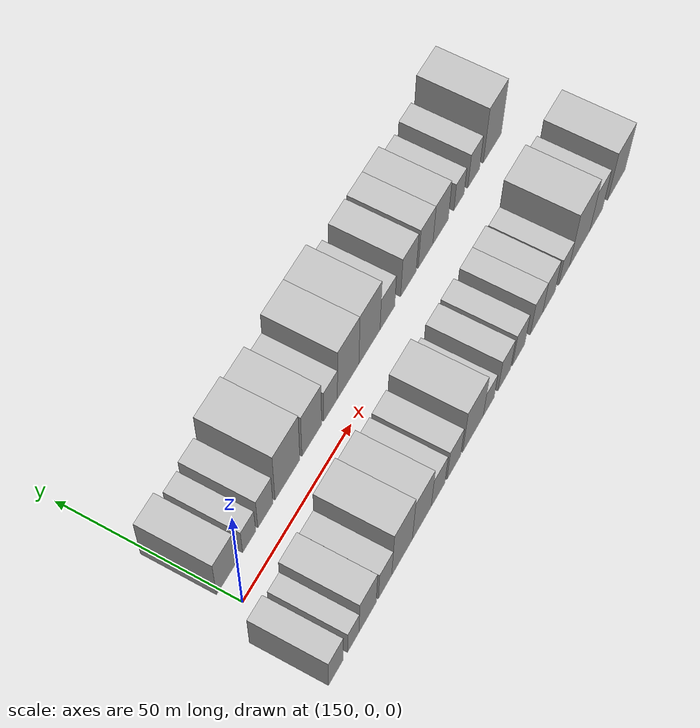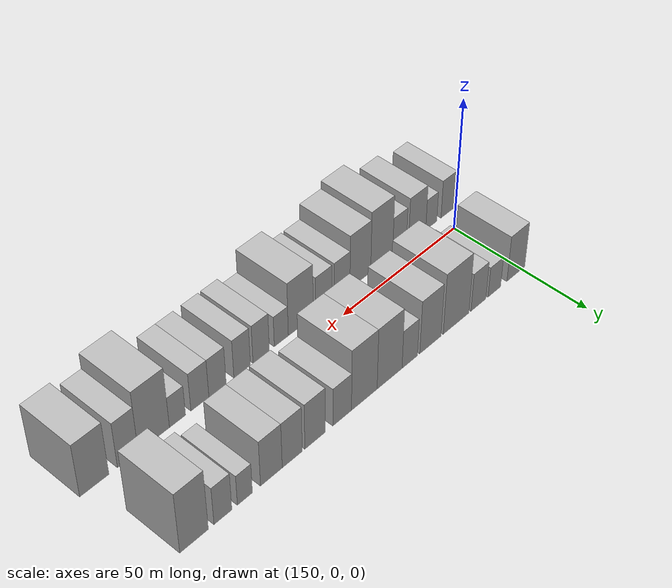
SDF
<sdf version="1.6">
 <world name="default">
  <model name="building_17">
   <static>1</static>
   <pose>152.8760 16.0000 0 0.000000 0.000000 1.570796</pose>
   <link name="link">
    <pose>0 0 9.00 0 0 0</pose>
    <collision name="collision"><geometry><box><size>20.0000 8.4531 18.0000</size></box></geometry></collision>
    <visual name="visual">
     <cast_shadows>0</cast_shadows>
     <geometry><box><size>20.0000 8.4531 18.0000</size></box></geometry>
     <material>
      <script>
       <uri>model://HANNAS_wall/materials/scripts</uri>
       <uri>model://HANNAS_wall/materials/textures</uri>
       <name>vrc/HANNAS_wall</name>
      </script>
     </material>
    </visual>
   </link>
  </model>
  <model name="building_18">
   <static>1</static>
   <pose>163.0296 16.0000 0 0.000000 0.000000 1.570796</pose>
   <link name="link">
    <pose>0 0 6.00 0 0 0</pose>
    <collision name="collision"><geometry><box><size>20.0000 5.8539 12.0000</size></box></geometry></collision>
    <visual name="visual">
     <cast_shadows>0</cast_shadows>
     <geometry><box><size>20.0000 5.8539 12.0000</size></box></geometry>
     <material>
      <script>
       <uri>model://HANNAS_wall/materials/scripts</uri>
       <uri>model://HANNAS_wall/materials/textures</uri>
       <name>vrc/HANNAS_wall</name>
      </script>
     </material>
    </visual>
   </link>
  </model>
  <model name="building_19">
   <static>1</static>
   <pose>170.3531 16.0000 0 0.000000 0.000000 1.570796</pose>
   <link name="link">
    <pose>0 0 7.50 0 0 0</pose>
    <collision name="collision"><geometry><box><size>20.0000 6.7931 15.0000</size></box></geometry></collision>
    <visual name="visual">
     <cast_shadows>0</cast_shadows>
     <geometry><box><size>20.0000 6.7931 15.0000</size></box></geometry>
     <material>
      <script>
       <uri>model://HANNAS_wall/materials/scripts</uri>
       <uri>model://HANNAS_wall/materials/textures</uri>
       <name>vrc/HANNAS_wall</name>
      </script>
     </material>
    </visual>
   </link>
  </model>
  <model name="building_20">
   <static>1</static>
   <pose>180.4915 16.0000 0 0.000000 0.000000 1.570796</pose>
   <link name="link">
    <pose>0 0 12.00 0 0 0</pose>
    <collision name="collision"><geometry><box><size>20.0000 11.4838 24.0000</size></box></geometry></collision>
    <visual name="visual">
     <cast_shadows>0</cast_shadows>
     <geometry><box><size>20.0000 11.4838 24.0000</size></box></geometry>
     <material>
      <script>
       <uri>model://HANNAS_wall/materials/scripts</uri>
       <uri>model://HANNAS_wall/materials/textures</uri>
       <name>vrc/HANNAS_wall</name>
      </script>
     </material>
    </visual>
   </link>
  </model>
  <model name="building_21">
   <static>1</static>
   <pose>191.8626 16.0000 0 0.000000 0.000000 1.570796</pose>
   <link name="link">
    <pose>0 0 10.50 0 0 0</pose>
    <collision name="collision"><geometry><box><size>20.0000 9.2583 21.0000</size></box></geometry></collision>
    <visual name="visual">
     <cast_shadows>0</cast_shadows>
     <geometry><box><size>20.0000 9.2583 21.0000</size></box></geometry>
     <material>
      <script>
       <uri>model://HANNAS_wall/materials/scripts</uri>
       <uri>model://HANNAS_wall/materials/textures</uri>
       <name>vrc/HANNAS_wall</name>
      </script>
     </material>
    </visual>
   </link>
  </model>
  <model name="building_22">
   <static>1</static>
   <pose>200.7845 16.0000 0 0.000000 0.000000 1.570796</pose>
   <link name="link">
    <pose>0 0 7.50 0 0 0</pose>
    <collision name="collision"><geometry><box><size>20.0000 6.5855 15.0000</size></box></geometry></collision>
    <visual name="visual">
     <cast_shadows>0</cast_shadows>
     <geometry><box><size>20.0000 6.5855 15.0000</size></box></geometry>
     <material>
      <script>
       <uri>model://HANNAS_wall/materials/scripts</uri>
       <uri>model://HANNAS_wall/materials/textures</uri>
       <name>vrc/HANNAS_wall</name>
      </script>
     </material>
    </visual>
   </link>
  </model>
  <model name="building_23">
   <static>1</static>
   <pose>209.3078 16.0000 0 0.000000 0.000000 1.570796</pose>
   <link name="link">
    <pose>0 0 12.00 0 0 0</pose>
    <collision name="collision"><geometry><box><size>20.0000 10.4612 24.0000</size></box></geometry></collision>
    <visual name="visual">
     <cast_shadows>0</cast_shadows>
     <geometry><box><size>20.0000 10.4612 24.0000</size></box></geometry>
     <material>
      <script>
       <uri>model://HANNAS_wall/materials/scripts</uri>
       <uri>model://HANNAS_wall/materials/textures</uri>
       <name>vrc/HANNAS_wall</name>
      </script>
     </material>
    </visual>
   </link>
  </model>
  <model name="building_24">
   <static>1</static>
   <pose>219.7901 16.0000 0 0.000000 0.000000 1.570796</pose>
   <link name="link">
    <pose>0 0 12.00 0 0 0</pose>
    <collision name="collision"><geometry><box><size>20.0000 10.5034 24.0000</size></box></geometry></collision>
    <visual name="visual">
     <cast_shadows>0</cast_shadows>
     <geometry><box><size>20.0000 10.5034 24.0000</size></box></geometry>
     <material>
      <script>
       <uri>model://HANNAS_wall/materials/scripts</uri>
       <uri>model://HANNAS_wall/materials/textures</uri>
       <name>vrc/HANNAS_wall</name>
      </script>
     </material>
    </visual>
   </link>
  </model>
  <model name="building_25">
   <static>1</static>
   <pose>228.7678 16.0000 0 0.000000 0.000000 1.570796</pose>
   <link name="link">
    <pose>0 0 7.50 0 0 0</pose>
    <collision name="collision"><geometry><box><size>20.0000 7.4520 15.0000</size></box></geometry></collision>
    <visual name="visual">
     <cast_shadows>0</cast_shadows>
     <geometry><box><size>20.0000 7.4520 15.0000</size></box></geometry>
     <material>
      <script>
       <uri>model://HANNAS_wall/materials/scripts</uri>
       <uri>model://HANNAS_wall/materials/textures</uri>
       <name>vrc/HANNAS_wall</name>
      </script>
     </material>
    </visual>
   </link>
  </model>
  <model name="building_26">
   <static>1</static>
   <pose>239.5030 16.0000 0 0.000000 0.000000 1.570796</pose>
   <link name="link">
    <pose>0 0 9.00 0 0 0</pose>
    <collision name="collision"><geometry><box><size>20.0000 8.0183 18.0000</size></box></geometry></collision>
    <visual name="visual">
     <cast_shadows>0</cast_shadows>
     <geometry><box><size>20.0000 8.0183 18.0000</size></box></geometry>
     <material>
      <script>
       <uri>model://HANNAS_wall/materials/scripts</uri>
       <uri>model://HANNAS_wall/materials/textures</uri>
       <name>vrc/HANNAS_wall</name>
      </script>
     </material>
    </visual>
   </link>
  </model>
  <model name="building_27">
   <static>1</static>
   <pose>248.3474 16.0000 0 0.000000 0.000000 1.570796</pose>
   <link name="link">
    <pose>0 0 9.00 0 0 0</pose>
    <collision name="collision"><geometry><box><size>20.0000 7.6706 18.0000</size></box></geometry></collision>
    <visual name="visual">
     <cast_shadows>0</cast_shadows>
     <geometry><box><size>20.0000 7.6706 18.0000</size></box></geometry>
     <material>
      <script>
       <uri>model://HANNAS_wall/materials/scripts</uri>
       <uri>model://HANNAS_wall/materials/textures</uri>
       <name>vrc/HANNAS_wall</name>
      </script>
     </material>
    </visual>
   </link>
  </model>
  <model name="building_28">
   <static>1</static>
   <pose>256.2662 16.0000 0 0.000000 0.000000 1.570796</pose>
   <link name="link">
    <pose>0 0 9.00 0 0 0</pose>
    <collision name="collision"><geometry><box><size>20.0000 8.1670 18.0000</size></box></geometry></collision>
    <visual name="visual">
     <cast_shadows>0</cast_shadows>
     <geometry><box><size>20.0000 8.1670 18.0000</size></box></geometry>
     <material>
      <script>
       <uri>model://HANNAS_wall/materials/scripts</uri>
       <uri>model://HANNAS_wall/materials/textures</uri>
       <name>vrc/HANNAS_wall</name>
      </script>
     </material>
    </visual>
   </link>
  </model>
  <model name="building_29">
   <static>1</static>
   <pose>266.1053 16.0000 0 0.000000 0.000000 1.570796</pose>
   <link name="link">
    <pose>0 0 6.00 0 0 0</pose>
    <collision name="collision"><geometry><box><size>20.0000 5.5113 12.0000</size></box></geometry></collision>
    <visual name="visual">
     <cast_shadows>0</cast_shadows>
     <geometry><box><size>20.0000 5.5113 12.0000</size></box></geometry>
     <material>
      <script>
       <uri>model://HANNAS_wall/materials/scripts</uri>
       <uri>model://HANNAS_wall/materials/textures</uri>
       <name>vrc/HANNAS_wall</name>
      </script>
     </material>
    </visual>
   </link>
  </model>
  <model name="building_30">
   <static>1</static>
   <pose>274.0847 16.0000 0 0.000000 0.000000 1.570796</pose>
   <link name="link">
    <pose>0 0 7.50 0 0 0</pose>
    <collision name="collision"><geometry><box><size>20.0000 6.4473 15.0000</size></box></geometry></collision>
    <visual name="visual">
     <cast_shadows>0</cast_shadows>
     <geometry><box><size>20.0000 6.4473 15.0000</size></box></geometry>
     <material>
      <script>
       <uri>model://HANNAS_wall/materials/scripts</uri>
       <uri>model://HANNAS_wall/materials/textures</uri>
       <name>vrc/HANNAS_wall</name>
      </script>
     </material>
    </visual>
   </link>
  </model>
  <model name="building_31">
   <static>1</static>
   <pose>284.3253 16.0000 0 0.000000 0.000000 1.570796</pose>
   <link name="link">
    <pose>0 0 12.00 0 0 0</pose>
    <collision name="collision"><geometry><box><size>20.0000 10.0339 24.0000</size></box></geometry></collision>
    <visual name="visual">
     <cast_shadows>0</cast_shadows>
     <geometry><box><size>20.0000 10.0339 24.0000</size></box></geometry>
     <material>
      <script>
       <uri>model://HANNAS_wall/materials/scripts</uri>
       <uri>model://HANNAS_wall/materials/textures</uri>
       <name>vrc/HANNAS_wall</name>
      </script>
     </material>
    </visual>
   </link>
  </model>
  <model name="building_46">
   <static>1</static>
   <pose>145.9405 -16.0000 0 0.000000 0.000000 1.570796</pose>
   <link name="link">
    <pose>0 0 7.50 0 0 0</pose>
    <collision name="collision"><geometry><box><size>20.0000 6.5711 15.0000</size></box></geometry></collision>
    <visual name="visual">
     <cast_shadows>0</cast_shadows>
     <geometry><box><size>20.0000 6.5711 15.0000</size></box></geometry>
     <material>
      <script>
       <uri>model://HANNAS_wall/materials/scripts</uri>
       <uri>model://HANNAS_wall/materials/textures</uri>
       <name>vrc/HANNAS_wall</name>
      </script>
     </material>
    </visual>
   </link>
  </model>
  <model name="building_47">
   <static>1</static>
   <pose>153.8196 -16.0000 0 0.000000 0.000000 1.570796</pose>
   <link name="link">
    <pose>0 0 6.00 0 0 0</pose>
    <collision name="collision"><geometry><box><size>20.0000 5.1871 12.0000</size></box></geometry></collision>
    <visual name="visual">
     <cast_shadows>0</cast_shadows>
     <geometry><box><size>20.0000 5.1871 12.0000</size></box></geometry>
     <material>
      <script>
       <uri>model://HANNAS_wall/materials/scripts</uri>
       <uri>model://HANNAS_wall/materials/textures</uri>
       <name>vrc/HANNAS_wall</name>
      </script>
     </material>
    </visual>
   </link>
  </model>
  <model name="building_48">
   <static>1</static>
   <pose>160.4005 -16.0000 0 0.000000 0.000000 1.570796</pose>
   <link name="link">
    <pose>0 0 9.00 0 0 0</pose>
    <collision name="collision"><geometry><box><size>20.0000 7.9746 18.0000</size></box></geometry></collision>
    <visual name="visual">
     <cast_shadows>0</cast_shadows>
     <geometry><box><size>20.0000 7.9746 18.0000</size></box></geometry>
     <material>
      <script>
       <uri>model://HANNAS_wall/materials/scripts</uri>
       <uri>model://HANNAS_wall/materials/textures</uri>
       <name>vrc/HANNAS_wall</name>
      </script>
     </material>
    </visual>
   </link>
  </model>
  <model name="building_49">
   <static>1</static>
   <pose>168.5169 -16.0000 0 0.000000 0.000000 1.570796</pose>
   <link name="link">
    <pose>0 0 7.50 0 0 0</pose>
    <collision name="collision"><geometry><box><size>20.0000 6.2583 15.0000</size></box></geometry></collision>
    <visual name="visual">
     <cast_shadows>0</cast_shadows>
     <geometry><box><size>20.0000 6.2583 15.0000</size></box></geometry>
     <material>
      <script>
       <uri>model://HANNAS_wall/materials/scripts</uri>
       <uri>model://HANNAS_wall/materials/textures</uri>
       <name>vrc/HANNAS_wall</name>
      </script>
     </material>
    </visual>
   </link>
  </model>
  <model name="building_50">
   <static>1</static>
   <pose>176.5633 -16.0000 0 0.000000 0.000000 1.570796</pose>
   <link name="link">
    <pose>0 0 12.00 0 0 0</pose>
    <collision name="collision"><geometry><box><size>20.0000 9.8346 24.0000</size></box></geometry></collision>
    <visual name="visual">
     <cast_shadows>0</cast_shadows>
     <geometry><box><size>20.0000 9.8346 24.0000</size></box></geometry>
     <material>
      <script>
       <uri>model://HANNAS_wall/materials/scripts</uri>
       <uri>model://HANNAS_wall/materials/textures</uri>
       <name>vrc/HANNAS_wall</name>
      </script>
     </material>
    </visual>
   </link>
  </model>
  <model name="building_51">
   <static>1</static>
   <pose>186.0494 -16.0000 0 0.000000 0.000000 1.570796</pose>
   <link name="link">
    <pose>0 0 10.50 0 0 0</pose>
    <collision name="collision"><geometry><box><size>20.0000 9.1376 21.0000</size></box></geometry></collision>
    <visual name="visual">
     <cast_shadows>0</cast_shadows>
     <geometry><box><size>20.0000 9.1376 21.0000</size></box></geometry>
     <material>
      <script>
       <uri>model://HANNAS_wall/materials/scripts</uri>
       <uri>model://HANNAS_wall/materials/textures</uri>
       <name>vrc/HANNAS_wall</name>
      </script>
     </material>
    </visual>
   </link>
  </model>
  <model name="building_52">
   <static>1</static>
   <pose>194.0189 -16.0000 0 0.000000 0.000000 1.570796</pose>
   <link name="link">
    <pose>0 0 7.50 0 0 0</pose>
    <collision name="collision"><geometry><box><size>20.0000 6.8016 15.0000</size></box></geometry></collision>
    <visual name="visual">
     <cast_shadows>0</cast_shadows>
     <geometry><box><size>20.0000 6.8016 15.0000</size></box></geometry>
     <material>
      <script>
       <uri>model://HANNAS_wall/materials/scripts</uri>
       <uri>model://HANNAS_wall/materials/textures</uri>
       <name>vrc/HANNAS_wall</name>
      </script>
     </material>
    </visual>
   </link>
  </model>
  <model name="building_53">
   <static>1</static>
   <pose>201.8408 -16.0000 0 0.000000 0.000000 1.570796</pose>
   <link name="link">
    <pose>0 0 7.50 0 0 0</pose>
    <collision name="collision"><geometry><box><size>20.0000 6.8421 15.0000</size></box></geometry></collision>
    <visual name="visual">
     <cast_shadows>0</cast_shadows>
     <geometry><box><size>20.0000 6.8421 15.0000</size></box></geometry>
     <material>
      <script>
       <uri>model://HANNAS_wall/materials/scripts</uri>
       <uri>model://HANNAS_wall/materials/textures</uri>
       <name>vrc/HANNAS_wall</name>
      </script>
     </material>
    </visual>
   </link>
  </model>
  <model name="building_54">
   <static>1</static>
   <pose>211.4573 -16.0000 0 0.000000 0.000000 1.570796</pose>
   <link name="link">
    <pose>0 0 10.50 0 0 0</pose>
    <collision name="collision"><geometry><box><size>20.0000 10.3910 21.0000</size></box></geometry></collision>
    <visual name="visual">
     <cast_shadows>0</cast_shadows>
     <geometry><box><size>20.0000 10.3910 21.0000</size></box></geometry>
     <material>
      <script>
       <uri>model://HANNAS_wall/materials/scripts</uri>
       <uri>model://HANNAS_wall/materials/textures</uri>
       <name>vrc/HANNAS_wall</name>
      </script>
     </material>
    </visual>
   </link>
  </model>
  <model name="building_55">
   <static>1</static>
   <pose>219.5075 -16.0000 0 0.000000 0.000000 1.570796</pose>
   <link name="link">
    <pose>0 0 6.00 0 0 0</pose>
    <collision name="collision"><geometry><box><size>20.0000 5.7094 12.0000</size></box></geometry></collision>
    <visual name="visual">
     <cast_shadows>0</cast_shadows>
     <geometry><box><size>20.0000 5.7094 12.0000</size></box></geometry>
     <material>
      <script>
       <uri>model://HANNAS_wall/materials/scripts</uri>
       <uri>model://HANNAS_wall/materials/textures</uri>
       <name>vrc/HANNAS_wall</name>
      </script>
     </material>
    </visual>
   </link>
  </model>
  <model name="building_56">
   <static>1</static>
   <pose>227.6432 -16.0000 0 0.000000 0.000000 1.570796</pose>
   <link name="link">
    <pose>0 0 7.50 0 0 0</pose>
    <collision name="collision"><geometry><box><size>20.0000 6.5619 15.0000</size></box></geometry></collision>
    <visual name="visual">
     <cast_shadows>0</cast_shadows>
     <geometry><box><size>20.0000 6.5619 15.0000</size></box></geometry>
     <material>
      <script>
       <uri>model://HANNAS_wall/materials/scripts</uri>
       <uri>model://HANNAS_wall/materials/textures</uri>
       <name>vrc/HANNAS_wall</name>
      </script>
     </material>
    </visual>
   </link>
  </model>
  <model name="building_57">
   <static>1</static>
   <pose>235.1848 -16.0000 0 0.000000 0.000000 1.570796</pose>
   <link name="link">
    <pose>0 0 7.50 0 0 0</pose>
    <collision name="collision"><geometry><box><size>20.0000 6.5214 15.0000</size></box></geometry></collision>
    <visual name="visual">
     <cast_shadows>0</cast_shadows>
     <geometry><box><size>20.0000 6.5214 15.0000</size></box></geometry>
     <material>
      <script>
       <uri>model://HANNAS_wall/materials/scripts</uri>
       <uri>model://HANNAS_wall/materials/textures</uri>
       <name>vrc/HANNAS_wall</name>
      </script>
     </material>
    </visual>
   </link>
  </model>
  <model name="building_58">
   <static>1</static>
   <pose>244.7732 -16.0000 0 0.000000 0.000000 1.570796</pose>
   <link name="link">
    <pose>0 0 7.50 0 0 0</pose>
    <collision name="collision"><geometry><box><size>20.0000 6.6553 15.0000</size></box></geometry></collision>
    <visual name="visual">
     <cast_shadows>0</cast_shadows>
     <geometry><box><size>20.0000 6.6553 15.0000</size></box></geometry>
     <material>
      <script>
       <uri>model://HANNAS_wall/materials/scripts</uri>
       <uri>model://HANNAS_wall/materials/textures</uri>
       <name>vrc/HANNAS_wall</name>
      </script>
     </material>
    </visual>
   </link>
  </model>
  <model name="building_59">
   <static>1</static>
   <pose>251.5111 -16.0000 0 0.000000 0.000000 1.570796</pose>
   <link name="link">
    <pose>0 0 7.50 0 0 0</pose>
    <collision name="collision"><geometry><box><size>20.0000 6.8207 15.0000</size></box></geometry></collision>
    <visual name="visual">
     <cast_shadows>0</cast_shadows>
     <geometry><box><size>20.0000 6.8207 15.0000</size></box></geometry>
     <material>
      <script>
       <uri>model://HANNAS_wall/materials/scripts</uri>
       <uri>model://HANNAS_wall/materials/textures</uri>
       <name>vrc/HANNAS_wall</name>
      </script>
     </material>
    </visual>
   </link>
  </model>
  <model name="building_60">
   <static>1</static>
   <pose>259.9147 -16.0000 0 0.000000 0.000000 1.570796</pose>
   <link name="link">
    <pose>0 0 6.00 0 0 0</pose>
    <collision name="collision"><geometry><box><size>20.0000 5.9865 12.0000</size></box></geometry></collision>
    <visual name="visual">
     <cast_shadows>0</cast_shadows>
     <geometry><box><size>20.0000 5.9865 12.0000</size></box></geometry>
     <material>
      <script>
       <uri>model://HANNAS_wall/materials/scripts</uri>
       <uri>model://HANNAS_wall/materials/textures</uri>
       <name>vrc/HANNAS_wall</name>
      </script>
     </material>
    </visual>
   </link>
  </model>
  <model name="building_61">
   <static>1</static>
   <pose>268.6069 -16.0000 0 0.000000 0.000000 1.570796</pose>
   <link name="link">
    <pose>0 0 12.00 0 0 0</pose>
    <collision name="collision"><geometry><box><size>20.0000 11.3980 24.0000</size></box></geometry></collision>
    <visual name="visual">
     <cast_shadows>0</cast_shadows>
     <geometry><box><size>20.0000 11.3980 24.0000</size></box></geometry>
     <material>
      <script>
       <uri>model://HANNAS_wall/materials/scripts</uri>
       <uri>model://HANNAS_wall/materials/textures</uri>
       <name>vrc/HANNAS_wall</name>
      </script>
     </material>
    </visual>
   </link>
  </model>
  <model name="building_62">
   <static>1</static>
   <pose>277.9925 -16.0000 0 0.000000 0.000000 1.570796</pose>
   <link name="link">
    <pose>0 0 9.00 0 0 0</pose>
    <collision name="collision"><geometry><box><size>20.0000 7.3733 18.0000</size></box></geometry></collision>
    <visual name="visual">
     <cast_shadows>0</cast_shadows>
     <geometry><box><size>20.0000 7.3733 18.0000</size></box></geometry>
     <material>
      <script>
       <uri>model://HANNAS_wall/materials/scripts</uri>
       <uri>model://HANNAS_wall/materials/textures</uri>
       <name>vrc/HANNAS_wall</name>
      </script>
     </material>
    </visual>
   </link>
  </model>
  <model name="building_63">
   <static>1</static>
   <pose>289.7501 -16.0000 0 0.000000 0.000000 1.570796</pose>
   <link name="link">
    <pose>0 0 10.50 0 0 0</pose>
    <collision name="collision"><geometry><box><size>20.0000 10.1417 21.0000</size></box></geometry></collision>
    <visual name="visual">
     <cast_shadows>0</cast_shadows>
     <geometry><box><size>20.0000 10.1417 21.0000</size></box></geometry>
     <material>
      <script>
       <uri>model://HANNAS_wall/materials/scripts</uri>
       <uri>model://HANNAS_wall/materials/textures</uri>
       <name>vrc/HANNAS_wall</name>
      </script>
     </material>
    </visual>
   </link>
  </model>
 </world>
</sdf>
